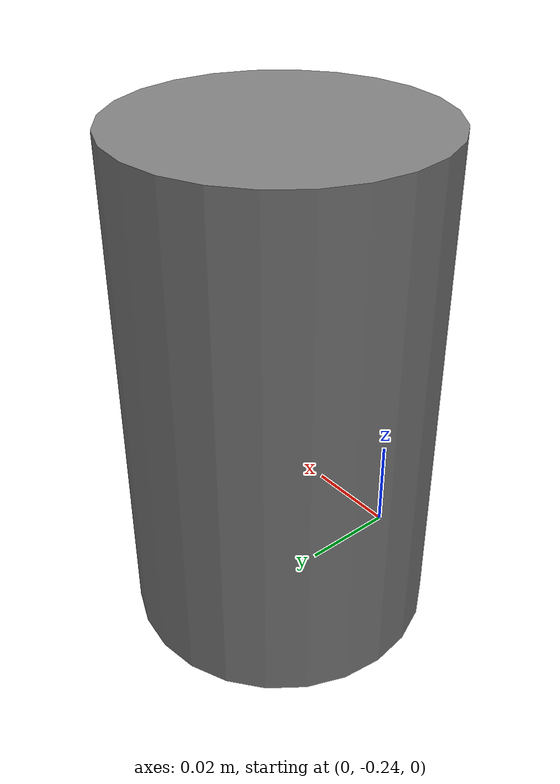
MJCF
<mujoco>
	<worldbody>
		<body name="cylinder" pos="0.0 -0.21 0.05" axisangle="0.0 0.0 1.0 0.0">
			<geom type="cylinder" size="0.03 0.05 0.04"/>
			<!-- Comment out to fix the object -->
		</body>

	</worldbody>

</mujoco>
